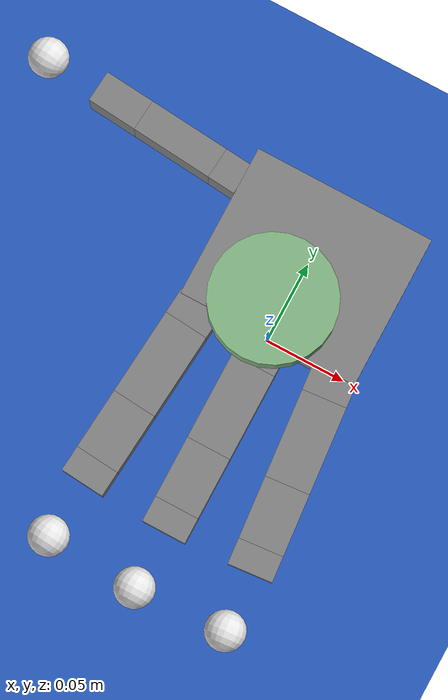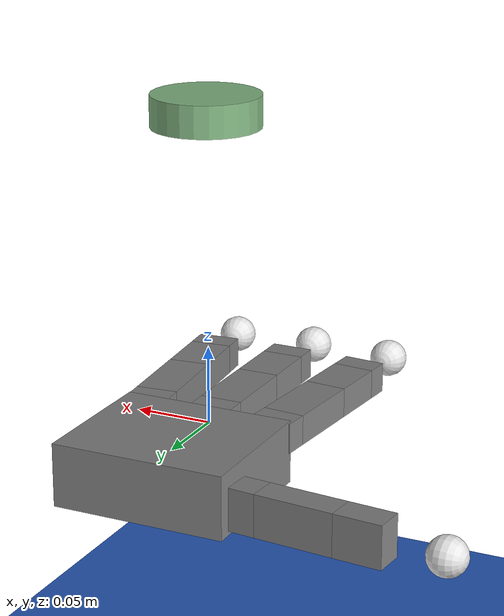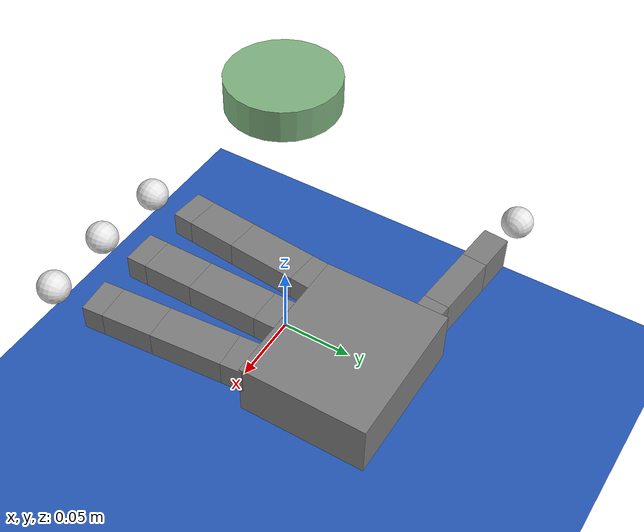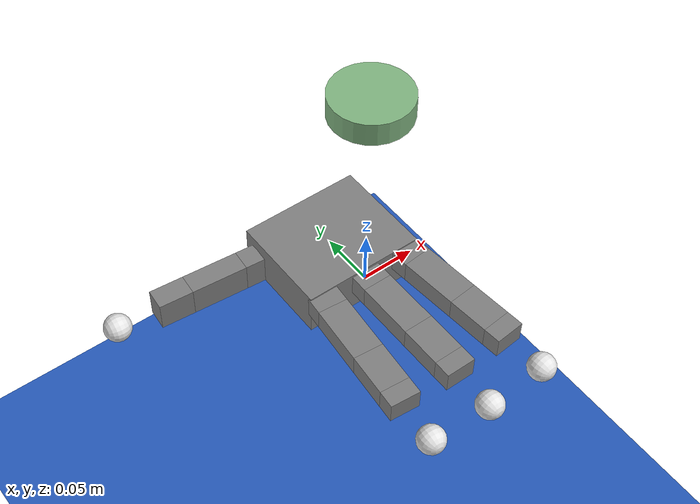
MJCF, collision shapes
<mujoco model="Metahand Hand Cube Rotation">
  <include file="../common.xml"/>

  <size memory="1M"/>

  <option integrator="implicitfast" iterations="100" ls_iterations="50"/>

  <custom>
    <!-- agent -->
    <numeric name="agent_planner" data="0" />
    <numeric name="agent_horizon" data="0.5" />
    <numeric name="agent_timestep" data="0.01" />
    <numeric name="agent_policy_width" data="0.0035" />
    <numeric name="sampling_spline_points" data="6" />
    <numeric name="sampling_exploration" data="0.1" />
    <numeric name="sampling_trajectories" data="10" />
    <numeric name="sampling_representation" data="2" />
    <numeric name="robust_xfrc" data="0.004" />
    <numeric name="gradient_spline_points" data="6" />

    <!-- cem -->
    <numeric name="n_elite" data="10" />
    <numeric name="std_min" data="0.2" />
  </custom>

  <!-- Set the camera viewpoint -->
  <statistic extent="0.4" center="0.3 0.1 0"/>
  <visual>
    <quality shadowsize="8192"/>
    <global azimuth="180" elevation="-30"/>
  </visual>

  <!-- Set default friction coefficient -->
  <default>
    <geom friction=".3"/>
  </default>

  <!-- Create the scene, including floor. -->
  <worldbody>
    <light pos="0 -0.1 0.5" dir="0 0.2 -1" diffuse="0.7 0.7 0.7" specular="0.3 0.3 0.3"
        directional="true" castshadow="true"/>
    <geom name="floor" pos="0 0 -0.2" size="0 0 0.05" type="plane" material="blue_grid"/>
    <!-- add a cylinder -->
    <body name="object" pos="0 0 0.2">
      <freejoint/>
      <geom type="cylinder" size="0.034 0.01" rgba="0.5 0.7 0.5 1" condim="3" priority="1" friction="0.8 0.002 0.002" material="blue_grid" density="1000"/>
    </body>
  </worldbody>

  <sensor>
    <!-- Residuals -->
    <user name="Actuation" dim="16" user="0 1 0.0 10" />
    <user name="Grasp" dim="16" user="0 0.1 0.0 10" />
    <user name="Joint Vel" dim="16" user="0 1.0e-3 0.0 0.1" />

    <!-- sensors -->
    <framepos name="object_position" objtype="body" objname="object"/>
    <framequat name="object_orientation" objtype="body" objname="object"/>
    <framelinvel name="object_linear_velocity" objtype="body" objname="object"/>
    <frameangvel name="object_angular_velocity" objtype="body" objname="object"/>

    <framepos name="trace0" objtype="body" objname="object"/>
  </sensor>

  <include file="metahand.xml"/>

  <keyframe>
    <key name="home" qpos='-0.00842207 -0.0125362 0.14 1 0 0 0 0.0143862 1.42557 0.145901 0.172863 1.182 1.08728 0.793195 0.00212516 -0.00140372 1.1927 0.0642763 0.183578 0.0750524 1.44143 0.339084 0.235215'/>
  </keyframe>
</mujoco>

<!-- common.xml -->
<mujoco>

    <visual>
        <headlight ambient=".4 .4 .4" diffuse=".8 .8 .8" specular="0.1 0.1 0.1"/>
        <map znear=".01"/>
        <quality shadowsize="2048"/>
        <global elevation="-15"/>
    </visual>

    <asset>
        <texture name="blue_grid" type="2d" builtin="checker" rgb1=".02 .14 .44" rgb2=".27 .55 1" width="300" height="300" mark="edge" markrgb="1 1 1"/>
        <material name="blue_grid" texture="blue_grid" texrepeat="1 1" texuniform="true" reflectance=".2"/>

        <texture name="grey_grid" type="2d" builtin="checker" rgb1=".26 .26 .26" rgb2=".6 .6 .6" width="300" height="300" mark="edge" markrgb="1 1 1"/>
        <material name="grey_grid" texture="grey_grid" texrepeat="1 1" texuniform="true" reflectance=".2"/>
        <texture name="skybox" type="skybox" builtin="gradient" rgb1=".66 .79 1" rgb2=".9 .91 .93" width="800" height="800"/>

        <material name="self" rgba=".7 .5 .3 1"/>
        <material name="self_default" rgba=".7 .5 .3 1"/>
        <material name="self_highlight" rgba="0 .5 .3 1"/>
        <material name="effector" rgba=".7 .4 .2 1"/>
        <material name="effector_default" rgba=".7 .4 .2 1"/>
        <material name="effector_highlight" rgba="0 .5 .3 1"/>
        <material name="decoration" rgba=".2 .6 .3 1"/>
        <material name="eye" rgba="0 .2 1 1"/>
        <material name="target" rgba=".6 .3 .3 1"/>
        <material name="target_default" rgba=".6 .3 .3 1"/>
        <material name="target_highlight" rgba=".6 .3 .3 .4"/>
        <material name="site" rgba=".5 .5 .5 .3"/>
    </asset>

    <size memory="1M"/>

    <statistic extent="0.4" center="0.3 0.1 0"/>

    <visual>
        <quality shadowsize="8192"/>
        <global azimuth="180" elevation="-30"/>
    </visual>

    <default>
        <geom friction="1.0"/>
    </default>

    <compiler angle="radian" autolimits="true"/>

    <asset>
        <mesh name="apple" file="../../shared_assets/apple/apple.obj" />
        <mesh name="apple_contact0" file="../../shared_assets/apple/contact0.stl"  />
        <mesh name="apple_contact1" file="../../shared_assets/apple/contact1.stl"  />

        <mesh name="doorknob" file="../../shared_assets/doorknob/doorknob.obj" />

        <mesh name="flashlight" file="../../shared_assets/flashlight/flashlight.obj" />
        <mesh name="flashlight_contact0" file="../../shared_assets/flashlight/contact0.stl"  />
        <mesh name="flashlight_contact1" file="../../shared_assets/flashlight/contact1.stl"  />

        <mesh name="hammer" file="../../shared_assets/hammer/hammer.obj" />
        <mesh name="hammer_contact0" file="../../shared_assets/hammer/contact0.stl"  />
        <mesh name="hammer_contact1" file="../../shared_assets/hammer/contact1.stl"  />

        <mesh name="phone" file="../../shared_assets/phone/phone.obj" />
        <mesh name="phone_contact0" file="../../shared_assets/phone/contact0.stl"  />
        <mesh name="phone_contact1" file="../../shared_assets/phone/contact1.stl"  />
        <mesh name="phone_contact2" file="../../shared_assets/phone/contact2.stl"  />

        <mesh name="stapler" file="../../shared_assets/stapler/stapler.obj" />
        <mesh name="stapler_contact0" file="../../shared_assets/stapler/contact0.stl"  />
        <mesh name="stapler_contact1" file="../../shared_assets/stapler/contact1.stl"  />
        <mesh name="stapler_contact2" file="../../shared_assets/stapler/contact2.stl"  />
        <mesh name="stapler_contact3" file="../../shared_assets/stapler/contact3.stl"  />
        <mesh name="stapler_contact4" file="../../shared_assets/stapler/contact4.stl"  />

        <mesh name="waterbottle" file="../../shared_assets/waterbottle/waterbottle.obj" />
        <mesh name="waterbottle_contact0" file="../../shared_assets/waterbottle/contact0.stl"  />
        <mesh name="waterbottle_contact1" file="../../shared_assets/waterbottle/contact1.stl"  />
    </asset>

</mujoco>

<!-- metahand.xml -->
<mujoco model="allegro_right">
  <compiler angle="radian" meshdir="assets" autolimits="true"/>

  <option cone="elliptic" impratio="10"/>

  <default>
    <default class="allegro_right">
      <joint axis="0 1 0" damping=".1"/>
      <position kp="0.5"/>
      <geom density="800"/>

      <default class="visual">
        <geom type="mesh" contype="0" conaffinity="0" group="2" material="black"/>
        <default class="palm_visual">
          <geom mesh="base_link"/>
        </default>
        <default class="base_visual">
          <geom mesh="link_0.0"/>
        </default>
        <default class="proximal_visual">
          <geom mesh="link_1.0"/>
        </default>
        <default class="medial_visual">
          <geom mesh="link_2.0"/>
        </default>
        <default class="distal_visual">
          <geom mesh="link_3.0"/>
        </default>
        <default class="fingertip_visual">
          <geom pos="0 0 0.0267" material="white" mesh="link_3.0_tip"/>
        </default>
        <default class="thumbtip_visual">
          <geom pos="0 0 0.0423" material="white" mesh="link_15.0_tip"/>
        </default>
      </default>

      <default class="collision">
        <geom group="3" type="box" mass="0"/>
        <default class="palm_collision">
          <geom size="0.0204 0.0565 0.0475" pos="-0.0093 0 -0.0475"/>
        </default>
        <default class="base_collision">
          <geom size="0.0098 0.01375 0.0082" pos="0 0 0.0082"/>
          <default class="thumb_base_collision">
            <geom size="0.0179 0.017 0.02275" pos="-0.0179 0.009 0.0145"/>
          </default>
        </default>
        <default class="proximal_collision">
          <geom size="0.0098 0.01375 0.027" pos="0 0 0.027"/>
          <default class="thumb_proximal_collision">
            <geom size="0.0098 0.01375 0.00885" pos="0 0 0.00885"/>
          </default>
        </default>
        <default class="medial_collision">
          <geom size="0.0098 0.01375 0.0192" pos="0 0 0.0192"/>
          <default class="thumb_medial_collision">
            <geom size="0.0098 0.01375 0.0257" pos="0 0 0.0257"/>
          </default>
        </default>
        <default class="distal_collision">
          <geom size="0.0098 0.01375 0.008" pos="0 0 0.008"/>
          <default class="thumb_distal_collision">
            <geom size="0.0098 0.01375 0.0157" pos="0 0 0.0157"/>
          </default>
        </default>
        <default class="fingertip_collision">
          <geom group="2" type="sphere" size="0.01235" pos="0 0 0.0515" rgba="0.9 0.9 0.9 1" />
          <default class="thumbtip_collision">
            <geom group="2" type="sphere" size="0.01235" pos="0 0 0.0671" rgba="0.9 0.9 0.9 1" />
          </default>
        </default>
      </default>

      <default class="base">
        <joint axis="0 0 1" range="-0.47 0.47"/>
        <position ctrlrange="-0.47 0.47"/>
      </default>
      <default class="proximal">
        <joint range="-0.196 1.61"/>
        <position ctrlrange="-0.196 1.61"/>
      </default>
      <default class="medial">
        <joint range="-0.174 1.709"/>
        <position ctrlrange="-0.174 1.709"/>
      </default>
      <default class="distal">
        <joint range="-0.227 1.618"/>
        <position ctrlrange="-0.227 1.618"/>
      </default>
      <default class="thumb_base">
        <joint axis="-1 0 0" range="0.263 1.396"/>
        <position ctrlrange="0.263 1.396"/>
      </default>
      <default class="thumb_proximal">
        <joint axis="0 0 1" range="-0.105 1.163"/>
        <position ctrlrange="-0.105 1.163"/>
      </default>
      <default class="thumb_medial">
        <joint range="-0.189 1.644"/>
        <position ctrlrange="-0.189 1.644"/>
      </default>
      <default class="thumb_distal">
        <joint range="-0.162 1.719"/>
        <position ctrlrange="-0.162 1.719"/>
      </default>
    </default>
  </default>

  <asset>
    <material name="black" rgba="0.2 0.2 0.2 1"/>
    <material name="white" rgba="0.9 0.9 0.9 1"/>

    <mesh file="base_link.stl"/>
    <mesh file="link_0.0.stl"/>
    <mesh file="link_1.0.stl"/>
    <mesh file="link_2.0.stl"/>
    <mesh file="link_3.0.stl"/>
    <mesh file="link_3.0_tip.stl"/>
    <mesh file="link_12.0_right.stl"/>
    <mesh file="link_13.0.stl"/>
    <mesh file="link_14.0.stl"/>
    <mesh file="link_15.0.stl"/>
    <mesh file="link_15.0_tip.stl"/>
  </asset>

  <worldbody>
    <body name="palm" quat="1 1 -1 1" childclass="allegro_right">
      <site name="grasp_site" pos="0.0 0.0 0.0" group="4"/>
      <geom class="palm_visual" mesh="base_link"/>
      <geom class="palm_collision"/>
      <!-- First finger -->
      <body name="ff_base" pos="0 0.0435 -0.001542" quat="0.999048 -0.0436194 0 0">
        <joint name="ffj0" class="base"/>
        <geom class="base_visual"/>
        <geom class="base_collision"/>
        <body name="ff_proximal" pos="0 0 0.0164">
          <joint name="ffj1" class="proximal"/>
          <geom class="proximal_visual"/>
          <geom class="proximal_collision"/>
          <body name="ff_medial" pos="0 0 0.054">
            <joint name="ffj2" class="medial"/>
            <geom class="medial_visual"/>
            <geom class="medial_collision"/>
            <body name="ff_distal" pos="0 0 0.0384">
              <joint name="ffj3" class="distal"/>
              <geom class="distal_visual"/>
              <geom class="distal_collision"/>
              <body name="ff_tip">
                <geom class="fingertip_visual"/>
                <geom class="fingertip_collision"/>
                <site name="tip" pos="0 0 0"/>
                <site name="ff_tip" pos="0 0 0"/>
              </body>
            </body>
          </body>
        </body>
      </body>
      <!-- Thumb -->
      <body name="th_base" pos="-0.0182 0.019333 -0.045987" quat="0.477714 -0.521334 -0.521334 -0.477714">
        <joint name="thj0" class="thumb_base"/>
        <geom class="visual" mesh="link_12.0_right"/>
        <geom class="thumb_base_collision"/>
        <body name="th_proximal" pos="-0.027 0.005 0.0399">
          <joint name="thj1" class="thumb_proximal"/>
          <geom class="visual" mesh="link_13.0"/>
          <geom class="thumb_proximal_collision"/>
          <body name="th_medial" pos="0 0 0.0177">
            <joint name="thj2" class="thumb_medial"/>
            <geom class="visual" mesh="link_14.0"/>
            <geom class="thumb_medial_collision"/>
            <body name="th_distal" pos="0 0 0.0514">
              <joint name="thj3" class="thumb_distal"/>
              <geom class="visual" mesh="link_15.0"/>
              <geom class="thumb_distal_collision"/>
              <body name="th_tip">
                <geom class="thumbtip_visual"/>
                <geom class="thumbtip_collision"/>
                <site name="th_tip" pos="0 0 0"/>
              </body>
            </body>
          </body>
        </body>
      </body>
      <!-- Middle finger -->
      <body name="mf_base" pos="0 0 0.0007">
        <joint name="mfj0" class="base"/>
        <geom class="base_visual"/>
        <geom class="base_collision"/>
        <body name="mf_proximal" pos="0 0 0.0164">
          <joint name="mfj1" class="proximal"/>
          <geom class="proximal_visual"/>
          <geom class="proximal_collision"/>
          <body name="mf_medial" pos="0 0 0.054">
            <joint name="mfj2" class="medial"/>
            <geom class="medial_visual"/>
            <geom class="medial_collision"/>
            <body name="mf_distal" pos="0 0 0.0384">
              <joint name="mfj3" class="distal"/>
              <geom class="distal_visual"/>
              <geom class="distal_collision"/>
              <body name="mf_tip">
                <geom class="fingertip_visual"/>
                <geom class="fingertip_collision"/>
                <site name="mf_tip" pos="0 0 0"/>
              </body>
            </body>
          </body>
        </body>
      </body>
      <!-- Ring finger -->
      <body name="rf_base" pos="0 -0.0435 -0.001542" quat="0.999048 0.0436194 0 0">
        <joint name="rfj0" class="base"/>
        <geom class="base_visual"/>
        <geom class="base_collision"/>
        <body name="rf_proximal" pos="0 0 0.0164">
          <joint name="rfj1" class="proximal"/>
          <geom class="proximal_visual"/>
          <geom class="proximal_collision"/>
          <body name="rf_medial" pos="0 0 0.054">
            <joint name="rfj2" class="medial"/>
            <geom class="medial_visual"/>
            <geom class="medial_collision"/>
            <body name="rf_distal" pos="0 0 0.0384">
              <joint name="rfj3" class="distal"/>
              <geom class="distal_visual"/>
              <geom class="distal_collision"/>
              <body name="rf_tip">
                <geom class="fingertip_visual"/>
                <geom class="fingertip_collision"/>
                <site name="rf_tip" pos="0 0 0"/>
              </body>
            </body>
          </body>
        </body>
      </body>
    </body>
  </worldbody>

  <contact>
    <exclude body1="palm" body2="ff_base"/>
    <exclude body1="palm" body2="mf_base"/>
    <exclude body1="palm" body2="rf_base"/>
    <exclude body1="palm" body2="th_base"/>
    <exclude body1="palm" body2="th_proximal"/>
  </contact>

  <actuator>
    <position name="ffa0" joint="ffj0" class="base"/>
    <position name="ffa1" joint="ffj1" class="proximal"/>
    <position name="ffa2" joint="ffj2" class="medial"/>
    <position name="ffa3" joint="ffj3" class="distal"/>
    <position name="tha0" joint="thj0" class="thumb_base"/>
    <position name="tha1" joint="thj1" class="thumb_proximal"/>
    <position name="tha2" joint="thj2" class="thumb_medial"/>
    <position name="tha3" joint="thj3" class="thumb_distal"/>
    <position name="mfa0" joint="mfj0" class="base"/>
    <position name="mfa1" joint="mfj1" class="proximal"/>
    <position name="mfa2" joint="mfj2" class="medial"/>
    <position name="mfa3" joint="mfj3" class="distal"/>
    <position name="rfa0" joint="rfj0" class="base"/>
    <position name="rfa1" joint="rfj1" class="proximal"/>
    <position name="rfa2" joint="rfj2" class="medial"/>
    <position name="rfa3" joint="rfj3" class="distal"/>
  </actuator>

  <!-- Traces for visualizing rollouts -->
  <sensor>
    <framepos name="trace1" objtype="body" objname="rf_tip"/>
    <framepos name="trace2" objtype="body" objname="ff_tip"/>
    <framepos name="trace3" objtype="body" objname="mf_tip"/>
    <framepos name="trace4" objtype="body" objname="th_tip"/>
  </sensor>
</mujoco>
